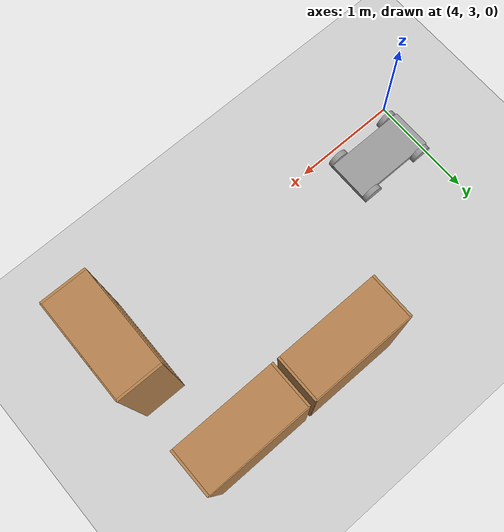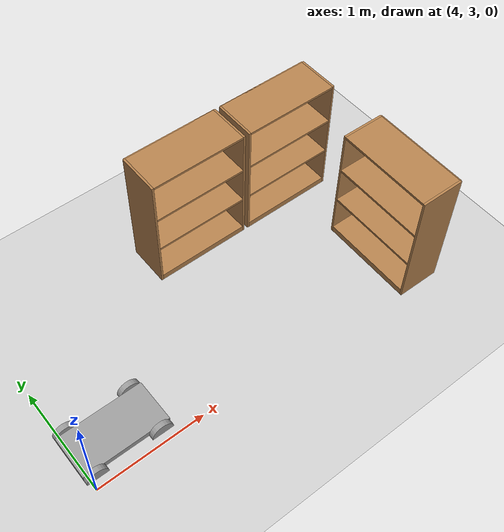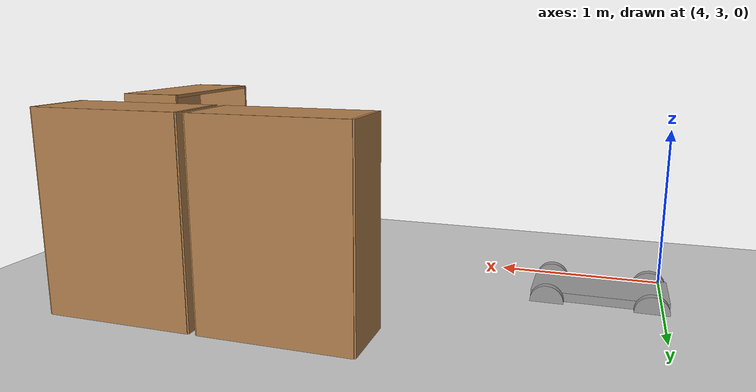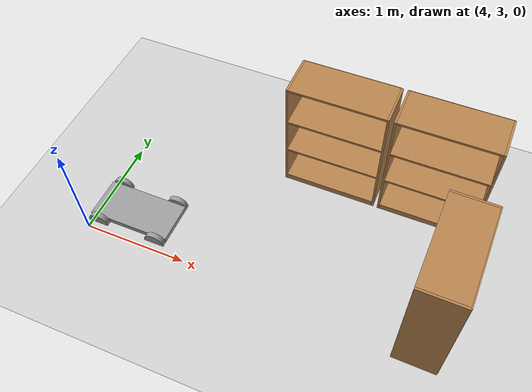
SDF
<sdf version="1.7">
 <world name="default">
  <model name="ground_plane">
   <static>1</static>
   <link name="link">
    <collision name="collision">
     <geometry><plane><normal>0 0 1</normal><size>100 100</size></plane></geometry>
     <surface>
      <contact><collide_bitmask>65535</collide_bitmask></contact>
      <friction><ode><mu>100</mu><mu2>50</mu2></ode></friction>
     </surface>
    </collision>
    <visual name="visual">
     <cast_shadows>0</cast_shadows>
     <geometry><plane><normal>0 0 1</normal><size>100 100</size></plane></geometry>
     <material>
      <script><uri>file://media/materials/scripts/gazebo.material</uri><name>Gazebo/Grey</name></script>
     </material>
    </visual>
   </link>
  </model>
  <model name="bookshelf">
   <static>1</static>
   <link name="link">
    <inertial><mass>1</mass></inertial>
    <collision name="back">
     <pose>0 0.005 0.6 0 -0 0</pose>
     <geometry><box><size>0.9 0.01 1.2</size></box></geometry>
    </collision>
    <visual name="visual1">
     <pose>0 0.005 0.6 0 -0 0</pose>
     <geometry><box><size>0.9 0.01 1.2</size></box></geometry>
     <material>
      <script><uri>file://media/materials/scripts/gazebo.material</uri><name>Gazebo/Wood</name></script>
     </material>
    </visual>
    <collision name="left_side">
     <pose>0.45 -0.195 0.6 0 -0 0</pose>
     <geometry><box><size>0.02 0.4 1.2</size></box></geometry>
    </collision>
    <visual name="visual2">
     <pose>0.45 -0.195 0.6 0 -0 0</pose>
     <geometry><box><size>0.02 0.4 1.2</size></box></geometry>
     <material>
      <script><uri>file://media/materials/scripts/gazebo.material</uri><name>Gazebo/Wood</name></script>
     </material>
    </visual>
    <collision name="right_side">
     <pose>-0.45 -0.195 0.6 0 -0 0</pose>
     <geometry><box><size>0.02 0.4 1.2</size></box></geometry>
    </collision>
    <visual name="visual3">
     <pose>-0.45 -0.195 0.6 0 -0 0</pose>
     <geometry><box><size>0.02 0.4 1.2</size></box></geometry>
     <material>
      <script><uri>file://media/materials/scripts/gazebo.material</uri><name>Gazebo/Wood</name></script>
     </material>
    </visual>
    <collision name="bottom">
     <pose>0 -0.195 0.03 0 -0 0</pose>
     <geometry><box><size>0.88 0.4 0.06</size></box></geometry>
    </collision>
    <visual name="visual4">
     <pose>0 -0.195 0.03 0 -0 0</pose>
     <geometry><box><size>0.88 0.4 0.06</size></box></geometry>
     <material>
      <script><uri>file://media/materials/scripts/gazebo.material</uri><name>Gazebo/Wood</name></script>
     </material>
    </visual>
    <collision name="top">
     <pose>0 -0.195 1.19 0 -0 0</pose>
     <geometry><box><size>0.88 0.4 0.02</size></box></geometry>
    </collision>
    <visual name="visual5">
     <pose>0 -0.195 1.19 0 -0 0</pose>
     <geometry><box><size>0.88 0.4 0.02</size></box></geometry>
     <material>
      <script><uri>file://media/materials/scripts/gazebo.material</uri><name>Gazebo/Wood</name></script>
     </material>
    </visual>
    <collision name="low_shelf">
     <pose>0 -0.195 0.43 0 -0 0</pose>
     <geometry><box><size>0.88 0.4 0.02</size></box></geometry>
    </collision>
    <visual name="visual6">
     <pose>0 -0.195 0.43 0 -0 0</pose>
     <geometry><box><size>0.88 0.4 0.02</size></box></geometry>
     <material>
      <script><uri>file://media/materials/scripts/gazebo.material</uri><name>Gazebo/Wood</name></script>
     </material>
    </visual>
    <collision name="high_shelf">
     <pose>0 -0.195 0.8 0 -0 0</pose>
     <geometry><box><size>0.88 0.4 0.02</size></box></geometry>
    </collision>
    <visual name="visual7">
     <pose>0 -0.195 0.8 0 -0 0</pose>
     <geometry><box><size>0.88 0.4 0.02</size></box></geometry>
     <material>
      <script><uri>file://media/materials/scripts/gazebo.material</uri><name>Gazebo/Wood</name></script>
     </material>
    </visual>
   </link>
   <pose>6.91058 4.65817 0 0 -0 0</pose>
  </model>
  <model name="bookshelf_clone">
   <static>1</static>
   <link name="link">
    <inertial><mass>1</mass></inertial>
    <collision name="back">
     <pose>0 0.005 0.6 0 -0 0</pose>
     <geometry><box><size>0.9 0.01 1.2</size></box></geometry>
    </collision>
    <visual name="visual1">
     <pose>0 0.005 0.6 0 -0 0</pose>
     <geometry><box><size>0.9 0.01 1.2</size></box></geometry>
     <material>
      <script><uri>file://media/materials/scripts/gazebo.material</uri><name>Gazebo/Wood</name></script>
     </material>
    </visual>
    <collision name="left_side">
     <pose>0.45 -0.195 0.6 0 -0 0</pose>
     <geometry><box><size>0.02 0.4 1.2</size></box></geometry>
    </collision>
    <visual name="visual2">
     <pose>0.45 -0.195 0.6 0 -0 0</pose>
     <geometry><box><size>0.02 0.4 1.2</size></box></geometry>
     <material>
      <script><uri>file://media/materials/scripts/gazebo.material</uri><name>Gazebo/Wood</name></script>
     </material>
    </visual>
    <collision name="right_side">
     <pose>-0.45 -0.195 0.6 0 -0 0</pose>
     <geometry><box><size>0.02 0.4 1.2</size></box></geometry>
    </collision>
    <visual name="visual3">
     <pose>-0.45 -0.195 0.6 0 -0 0</pose>
     <geometry><box><size>0.02 0.4 1.2</size></box></geometry>
     <material>
      <script><uri>file://media/materials/scripts/gazebo.material</uri><name>Gazebo/Wood</name></script>
     </material>
    </visual>
    <collision name="bottom">
     <pose>0 -0.195 0.03 0 -0 0</pose>
     <geometry><box><size>0.88 0.4 0.06</size></box></geometry>
    </collision>
    <visual name="visual4">
     <pose>0 -0.195 0.03 0 -0 0</pose>
     <geometry><box><size>0.88 0.4 0.06</size></box></geometry>
     <material>
      <script><uri>file://media/materials/scripts/gazebo.material</uri><name>Gazebo/Wood</name></script>
     </material>
    </visual>
    <collision name="top">
     <pose>0 -0.195 1.19 0 -0 0</pose>
     <geometry><box><size>0.88 0.4 0.02</size></box></geometry>
    </collision>
    <visual name="visual5">
     <pose>0 -0.195 1.19 0 -0 0</pose>
     <geometry><box><size>0.88 0.4 0.02</size></box></geometry>
     <material>
      <script><uri>file://media/materials/scripts/gazebo.material</uri><name>Gazebo/Wood</name></script>
     </material>
    </visual>
    <collision name="low_shelf">
     <pose>0 -0.195 0.43 0 -0 0</pose>
     <geometry><box><size>0.88 0.4 0.02</size></box></geometry>
    </collision>
    <visual name="visual6">
     <pose>0 -0.195 0.43 0 -0 0</pose>
     <geometry><box><size>0.88 0.4 0.02</size></box></geometry>
     <material>
      <script><uri>file://media/materials/scripts/gazebo.material</uri><name>Gazebo/Wood</name></script>
     </material>
    </visual>
    <collision name="high_shelf">
     <pose>0 -0.195 0.8 0 -0 0</pose>
     <geometry><box><size>0.88 0.4 0.02</size></box></geometry>
    </collision>
    <visual name="visual7">
     <pose>0 -0.195 0.8 0 -0 0</pose>
     <geometry><box><size>0.88 0.4 0.02</size></box></geometry>
     <material>
      <script><uri>file://media/materials/scripts/gazebo.material</uri><name>Gazebo/Wood</name></script>
     </material>
    </visual>
   </link>
   <pose>5.95198 4.65926 0 0 -0 0</pose>
  </model>
  <model name="bookshelf_clone_0">
   <static>1</static>
   <link name="link">
    <inertial><mass>1</mass></inertial>
    <collision name="back">
     <pose>0 0.005 0.6 0 -0 0</pose>
     <geometry><box><size>0.9 0.01 1.2</size></box></geometry>
    </collision>
    <visual name="visual1">
     <pose>0 0.005 0.6 0 -0 0</pose>
     <geometry><box><size>0.9 0.01 1.2</size></box></geometry>
     <material>
      <script><uri>file://media/materials/scripts/gazebo.material</uri><name>Gazebo/Wood</name></script>
     </material>
    </visual>
    <collision name="left_side">
     <pose>0.45 -0.195 0.6 0 -0 0</pose>
     <geometry><box><size>0.02 0.4 1.2</size></box></geometry>
    </collision>
    <visual name="visual2">
     <pose>0.45 -0.195 0.6 0 -0 0</pose>
     <geometry><box><size>0.02 0.4 1.2</size></box></geometry>
     <material>
      <script><uri>file://media/materials/scripts/gazebo.material</uri><name>Gazebo/Wood</name></script>
     </material>
    </visual>
    <collision name="right_side">
     <pose>-0.45 -0.195 0.6 0 -0 0</pose>
     <geometry><box><size>0.02 0.4 1.2</size></box></geometry>
    </collision>
    <visual name="visual3">
     <pose>-0.45 -0.195 0.6 0 -0 0</pose>
     <geometry><box><size>0.02 0.4 1.2</size></box></geometry>
     <material>
      <script><uri>file://media/materials/scripts/gazebo.material</uri><name>Gazebo/Wood</name></script>
     </material>
    </visual>
    <collision name="bottom">
     <pose>0 -0.195 0.03 0 -0 0</pose>
     <geometry><box><size>0.88 0.4 0.06</size></box></geometry>
    </collision>
    <visual name="visual4">
     <pose>0 -0.195 0.03 0 -0 0</pose>
     <geometry><box><size>0.88 0.4 0.06</size></box></geometry>
     <material>
      <script><uri>file://media/materials/scripts/gazebo.material</uri><name>Gazebo/Wood</name></script>
     </material>
    </visual>
    <collision name="top">
     <pose>0 -0.195 1.19 0 -0 0</pose>
     <geometry><box><size>0.88 0.4 0.02</size></box></geometry>
    </collision>
    <visual name="visual5">
     <pose>0 -0.195 1.19 0 -0 0</pose>
     <geometry><box><size>0.88 0.4 0.02</size></box></geometry>
     <material>
      <script><uri>file://media/materials/scripts/gazebo.material</uri><name>Gazebo/Wood</name></script>
     </material>
    </visual>
    <collision name="low_shelf">
     <pose>0 -0.195 0.43 0 -0 0</pose>
     <geometry><box><size>0.88 0.4 0.02</size></box></geometry>
    </collision>
    <visual name="visual6">
     <pose>0 -0.195 0.43 0 -0 0</pose>
     <geometry><box><size>0.88 0.4 0.02</size></box></geometry>
     <material>
      <script><uri>file://media/materials/scripts/gazebo.material</uri><name>Gazebo/Wood</name></script>
     </material>
    </visual>
    <collision name="high_shelf">
     <pose>0 -0.195 0.8 0 -0 0</pose>
     <geometry><box><size>0.88 0.4 0.02</size></box></geometry>
    </collision>
    <visual name="visual7">
     <pose>0 -0.195 0.8 0 -0 0</pose>
     <geometry><box><size>0.88 0.4 0.02</size></box></geometry>
     <material>
      <script><uri>file://media/materials/scripts/gazebo.material</uri><name>Gazebo/Wood</name></script>
     </material>
    </visual>
   </link>
   <pose>7.42751 3.31262 0 0 0 -1.58421</pose>
  </model>
  <model name="FourWheelRobot_1">
   <link name="link_1">
    <pose>-0.3 -0.225 -0 1.5708 -0 0</pose>
    <inertial>
     <mass>1</mass>
     <inertia><ixx>0.145833</ixx><ixy>0</ixy><ixz>0</ixz><iyy>0.145833</iyy><iyz>0</iyz><izz>0.125</izz></inertia>
    </inertial>
    <visual name="visual">
     <geometry><cylinder><radius>0.1</radius><length>0.05</length></cylinder></geometry>
     <material>
      <lighting>1</lighting>
      <script><uri>file://media/materials/scripts/gazebo.material</uri><name>Gazebo/Grey</name></script>
      <shader type="pixel"><normal_map>__default__</normal_map></shader>
      <ambient>0.3 0.3 0.3 1</ambient>
      <diffuse>0.7 0.7 0.7 1</diffuse>
      <specular>0.01 0.01 0.01 1</specular>
      <emissive>0 0 0 1</emissive>
     </material>
    </visual>
    <collision name="collision">
     <geometry><cylinder><radius>0.1</radius><length>0.05</length></cylinder></geometry>
     <surface>
      <friction>
       <ode><mu>1</mu><mu2>1</mu2><fdir1>0 0 0</fdir1><slip1>0</slip1><slip2>0</slip2></ode>
       <torsional>
        <coefficient>1</coefficient>
        <patch_radius>0</patch_radius>
        <surface_radius>0</surface_radius>
        <use_patch_radius>1</use_patch_radius>
        <ode><slip>0</slip></ode>
       </torsional>
      </friction>
      <bounce><restitution_coefficient>0</restitution_coefficient><threshold>1e+06</threshold></bounce>
      <contact>
       <collide_without_contact>0</collide_without_contact>
       <collide_without_contact_bitmask>1</collide_without_contact_bitmask>
       <collide_bitmask>1</collide_bitmask>
       <ode>
        <soft_cfm>0</soft_cfm>
        <soft_erp>0.2</soft_erp>
        <kp>1e+13</kp>
        <kd>1</kd>
        <max_vel>0.01</max_vel>
        <min_depth>0</min_depth>
       </ode>
       <bullet>
        <split_impulse>1</split_impulse>
        <split_impulse_penetration_threshold>-0.01</split_impulse_penetration_threshold>
        <soft_cfm>0</soft_cfm>
        <soft_erp>0.2</soft_erp>
        <kp>1e+13</kp>
        <kd>1</kd>
       </bullet>
      </contact>
     </surface>
    </collision>
   </link>
   <link name="link_1_clone">
    <pose>-0.3 0.225 -0 1.5708 -0 0</pose>
    <inertial>
     <mass>1</mass>
     <inertia><ixx>0.145833</ixx><ixy>0</ixy><ixz>0</ixz><iyy>0.145833</iyy><iyz>0</iyz><izz>0.125</izz></inertia>
    </inertial>
    <visual name="visual">
     <geometry><cylinder><radius>0.1</radius><length>0.05</length></cylinder></geometry>
     <material>
      <lighting>1</lighting>
      <script><uri>file://media/materials/scripts/gazebo.material</uri><name>Gazebo/Grey</name></script>
      <shader type="pixel"><normal_map>__default__</normal_map></shader>
      <ambient>0.3 0.3 0.3 1</ambient>
      <diffuse>0.7 0.7 0.7 1</diffuse>
      <specular>0.01 0.01 0.01 1</specular>
      <emissive>0 0 0 1</emissive>
     </material>
    </visual>
    <collision name="collision">
     <geometry><cylinder><radius>0.1</radius><length>0.05</length></cylinder></geometry>
     <surface>
      <friction>
       <ode><mu>1</mu><mu2>1</mu2><fdir1>0 0 0</fdir1><slip1>0</slip1><slip2>0</slip2></ode>
       <torsional>
        <coefficient>1</coefficient>
        <patch_radius>0</patch_radius>
        <surface_radius>0</surface_radius>
        <use_patch_radius>1</use_patch_radius>
        <ode><slip>0</slip></ode>
       </torsional>
      </friction>
      <bounce><restitution_coefficient>0</restitution_coefficient><threshold>1e+06</threshold></bounce>
      <contact>
       <collide_without_contact>0</collide_without_contact>
       <collide_without_contact_bitmask>1</collide_without_contact_bitmask>
       <collide_bitmask>1</collide_bitmask>
       <ode>
        <soft_cfm>0</soft_cfm>
        <soft_erp>0.2</soft_erp>
        <kp>1e+13</kp>
        <kd>1</kd>
        <max_vel>0.01</max_vel>
        <min_depth>0</min_depth>
       </ode>
       <bullet>
        <split_impulse>1</split_impulse>
        <split_impulse_penetration_threshold>-0.01</split_impulse_penetration_threshold>
        <soft_cfm>0</soft_cfm>
        <soft_erp>0.2</soft_erp>
        <kp>1e+13</kp>
        <kd>1</kd>
       </bullet>
      </contact>
     </surface>
    </collision>
   </link>
   <link name="link_1_clone_0">
    <pose>0.3 -0.225 -0 1.5708 -0 0</pose>
    <inertial>
     <mass>1</mass>
     <inertia><ixx>0.145833</ixx><ixy>0</ixy><ixz>0</ixz><iyy>0.145833</iyy><iyz>0</iyz><izz>0.125</izz></inertia>
    </inertial>
    <visual name="visual">
     <geometry><cylinder><radius>0.1</radius><length>0.05</length></cylinder></geometry>
     <material>
      <lighting>1</lighting>
      <script><uri>file://media/materials/scripts/gazebo.material</uri><name>Gazebo/Grey</name></script>
      <shader type="pixel"><normal_map>__default__</normal_map></shader>
      <ambient>0.3 0.3 0.3 1</ambient>
      <diffuse>0.7 0.7 0.7 1</diffuse>
      <specular>0.01 0.01 0.01 1</specular>
      <emissive>0 0 0 1</emissive>
     </material>
    </visual>
    <collision name="collision">
     <geometry><cylinder><radius>0.1</radius><length>0.05</length></cylinder></geometry>
     <surface>
      <friction>
       <ode><mu>1</mu><mu2>1</mu2><fdir1>0 0 0</fdir1><slip1>0</slip1><slip2>0</slip2></ode>
       <torsional>
        <coefficient>1</coefficient>
        <patch_radius>0</patch_radius>
        <surface_radius>0</surface_radius>
        <use_patch_radius>1</use_patch_radius>
        <ode><slip>0</slip></ode>
       </torsional>
      </friction>
      <bounce><restitution_coefficient>0</restitution_coefficient><threshold>1e+06</threshold></bounce>
      <contact>
       <collide_without_contact>0</collide_without_contact>
       <collide_without_contact_bitmask>1</collide_without_contact_bitmask>
       <collide_bitmask>1</collide_bitmask>
       <ode>
        <soft_cfm>0</soft_cfm>
        <soft_erp>0.2</soft_erp>
        <kp>1e+13</kp>
        <kd>1</kd>
        <max_vel>0.01</max_vel>
        <min_depth>0</min_depth>
       </ode>
       <bullet>
        <split_impulse>1</split_impulse>
        <split_impulse_penetration_threshold>-0.01</split_impulse_penetration_threshold>
        <soft_cfm>0</soft_cfm>
        <soft_erp>0.2</soft_erp>
        <kp>1e+13</kp>
        <kd>1</kd>
       </bullet>
      </contact>
     </surface>
    </collision>
   </link>
   <link name="link_1_clone_1">
    <pose>0.3 0.225 -0 1.5708 -0 0</pose>
    <inertial>
     <mass>1</mass>
     <inertia><ixx>0.145833</ixx><ixy>0</ixy><ixz>0</ixz><iyy>0.145833</iyy><iyz>0</iyz><izz>0.125</izz></inertia>
    </inertial>
    <visual name="visual">
     <geometry><cylinder><radius>0.1</radius><length>0.05</length></cylinder></geometry>
     <material>
      <lighting>1</lighting>
      <script><uri>file://media/materials/scripts/gazebo.material</uri><name>Gazebo/Grey</name></script>
      <shader type="pixel"><normal_map>__default__</normal_map></shader>
      <ambient>0.3 0.3 0.3 1</ambient>
      <diffuse>0.7 0.7 0.7 1</diffuse>
      <specular>0.01 0.01 0.01 1</specular>
      <emissive>0 0 0 1</emissive>
     </material>
    </visual>
    <collision name="collision">
     <geometry><cylinder><radius>0.1</radius><length>0.05</length></cylinder></geometry>
     <surface>
      <friction>
       <ode><mu>1</mu><mu2>1</mu2><fdir1>0 0 0</fdir1><slip1>0</slip1><slip2>0</slip2></ode>
       <torsional>
        <coefficient>1</coefficient>
        <patch_radius>0</patch_radius>
        <surface_radius>0</surface_radius>
        <use_patch_radius>1</use_patch_radius>
        <ode><slip>0</slip></ode>
       </torsional>
      </friction>
      <bounce><restitution_coefficient>0</restitution_coefficient><threshold>1e+06</threshold></bounce>
      <contact>
       <collide_without_contact>0</collide_without_contact>
       <collide_without_contact_bitmask>1</collide_without_contact_bitmask>
       <collide_bitmask>1</collide_bitmask>
       <ode>
        <soft_cfm>0</soft_cfm>
        <soft_erp>0.2</soft_erp>
        <kp>1e+13</kp>
        <kd>1</kd>
        <max_vel>0.01</max_vel>
        <min_depth>0</min_depth>
       </ode>
       <bullet>
        <split_impulse>1</split_impulse>
        <split_impulse_penetration_threshold>-0.01</split_impulse_penetration_threshold>
        <soft_cfm>0</soft_cfm>
        <soft_erp>0.2</soft_erp>
        <kp>1e+13</kp>
        <kd>1</kd>
       </bullet>
      </contact>
     </surface>
    </collision>
   </link>
   <link name="link_2">
    <pose>0 0 2e-06 0 -0 0</pose>
    <inertial>
     <mass>1</mass>
     <inertia>
      <ixx>0.166667</ixx>
      <ixy>0</ixy>
      <ixz>0</ixz>
      <iyy>0.166667</iyy>
      <iyz>0</iyz>
      <izz>0.166667</izz>
     </inertia>
    </inertial>
    <visual name="visual">
     <geometry><box><size>0.8 0.4 0.1</size></box></geometry>
     <material>
      <lighting>1</lighting>
      <script><uri>file://media/materials/scripts/gazebo.material</uri><name>Gazebo/Grey</name></script>
      <shader type="pixel"><normal_map>__default__</normal_map></shader>
      <ambient>0.3 0.3 0.3 1</ambient>
      <diffuse>0.7 0.7 0.7 1</diffuse>
      <specular>0.01 0.01 0.01 1</specular>
      <emissive>0 0 0 1</emissive>
     </material>
    </visual>
    <collision name="collision">
     <geometry><box><size>0.8 0.4 0.1</size></box></geometry>
     <surface>
      <friction>
       <ode><mu>1</mu><mu2>1</mu2><fdir1>0 0 0</fdir1><slip1>0</slip1><slip2>0</slip2></ode>
       <torsional>
        <coefficient>1</coefficient>
        <patch_radius>0</patch_radius>
        <surface_radius>0</surface_radius>
        <use_patch_radius>1</use_patch_radius>
        <ode><slip>0</slip></ode>
       </torsional>
      </friction>
      <bounce><restitution_coefficient>0</restitution_coefficient><threshold>1e+06</threshold></bounce>
      <contact>
       <collide_without_contact>0</collide_without_contact>
       <collide_without_contact_bitmask>1</collide_without_contact_bitmask>
       <collide_bitmask>1</collide_bitmask>
       <ode>
        <soft_cfm>0</soft_cfm>
        <soft_erp>0.2</soft_erp>
        <kp>1e+13</kp>
        <kd>1</kd>
        <max_vel>0.01</max_vel>
        <min_depth>0</min_depth>
       </ode>
       <bullet>
        <split_impulse>1</split_impulse>
        <split_impulse_penetration_threshold>-0.01</split_impulse_penetration_threshold>
        <soft_cfm>0</soft_cfm>
        <soft_erp>0.2</soft_erp>
        <kp>1e+13</kp>
        <kd>1</kd>
       </bullet>
      </contact>
     </surface>
    </collision>
   </link>
   <joint name="link_2_JOINT_2" type="revolute">
    <parent>link_2</parent>
    <child>link_1</child>
    <axis>
     <xyz>0 0 1</xyz>
     <limit>
      <lower>-1.79769e+308</lower>
      <upper>1.79769e+308</upper>
      <effort>-1</effort>
      <velocity>-1</velocity>
     </limit>
     <dynamics>
      <spring_reference>0</spring_reference>
      <spring_stiffness>0</spring_stiffness>
      <damping>0</damping>
     </dynamics>
    </axis>
    <physics>
     <ode><limit><cfm>0</cfm><erp>0.2</erp></limit><suspension><cfm>0</cfm><erp>0.2</erp></suspension></ode>
    </physics>
   </joint>
   <joint name="link_2_JOINT_3" type="revolute">
    <parent>link_2</parent>
    <child>link_1_clone</child>
    <axis>
     <xyz>0 0 1</xyz>
     <limit>
      <lower>-1.79769e+308</lower>
      <upper>1.79769e+308</upper>
      <effort>-1</effort>
      <velocity>-1</velocity>
     </limit>
     <dynamics>
      <spring_reference>0</spring_reference>
      <spring_stiffness>0</spring_stiffness>
      <damping>0</damping>
     </dynamics>
    </axis>
    <physics>
     <ode><limit><cfm>0</cfm><erp>0.2</erp></limit><suspension><cfm>0</cfm><erp>0.2</erp></suspension></ode>
    </physics>
   </joint>
   <joint name="link_2_JOINT_4" type="revolute">
    <parent>link_2</parent>
    <child>link_1_clone_1</child>
    <axis>
     <xyz>0 0 1</xyz>
     <limit>
      <lower>-1.79769e+308</lower>
      <upper>1.79769e+308</upper>
      <effort>-1</effort>
      <velocity>-1</velocity>
     </limit>
     <dynamics>
      <spring_reference>0</spring_reference>
      <spring_stiffness>0</spring_stiffness>
      <damping>0</damping>
     </dynamics>
    </axis>
    <physics>
     <ode><limit><cfm>0</cfm><erp>0.2</erp></limit><suspension><cfm>0</cfm><erp>0.2</erp></suspension></ode>
    </physics>
   </joint>
   <joint name="link_2_JOINT_5" type="revolute">
    <parent>link_2</parent>
    <child>link_1_clone_0</child>
    <axis>
     <xyz>0 0 1</xyz>
     <limit>
      <lower>-1.79769e+308</lower>
      <upper>1.79769e+308</upper>
      <effort>-1</effort>
      <velocity>-1</velocity>
     </limit>
     <dynamics>
      <spring_reference>0</spring_reference>
      <spring_stiffness>0</spring_stiffness>
      <damping>0</damping>
     </dynamics>
    </axis>
    <physics>
     <ode><limit><cfm>0</cfm><erp>0.2</erp></limit><suspension><cfm>0</cfm><erp>0.2</erp></suspension></ode>
    </physics>
   </joint>
   <static>0</static>
   <pose>4.36061 3.32028 -0 0 -0 0</pose>
  </model>
 </world>
</sdf>
